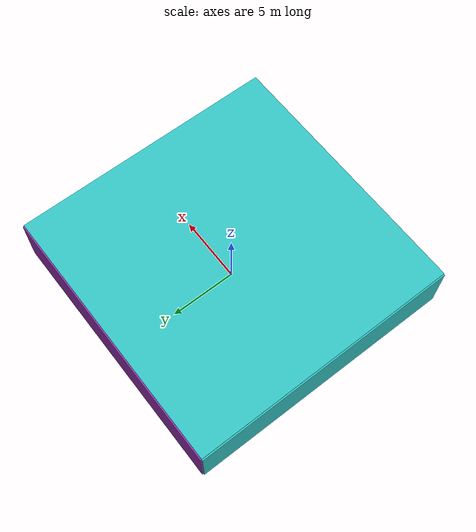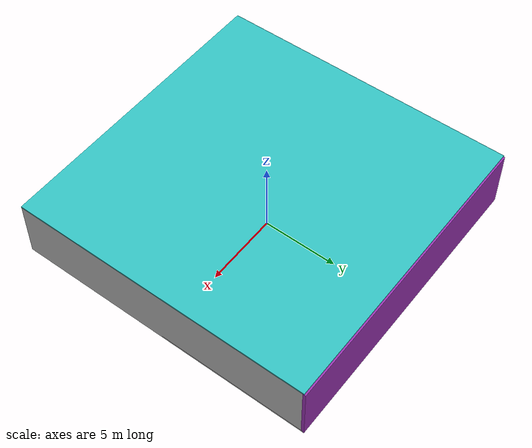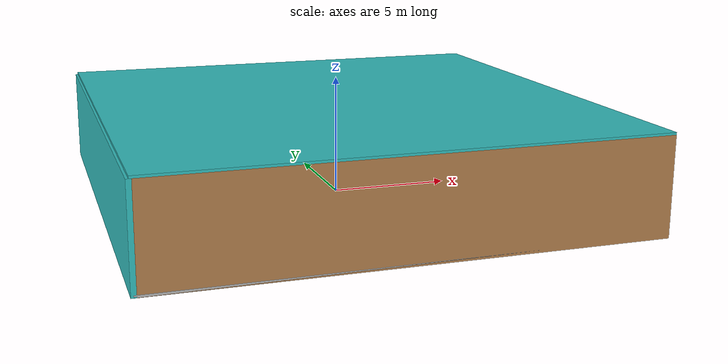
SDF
<sdf version="1.4">
 <world name="default">
  <physics type="ode">
   <max_step_size>0.001</max_step_size>
   <real_time_factor>1</real_time_factor>
   <real_time_update_rate>1000</real_time_update_rate>
   <gravity>0 0 -9.8</gravity>
  </physics>
  <scene><ambient>0.4 0.4 0.4 1</ambient><background>0.7 0.7 0.7 1</background><shadows>1</shadows></scene>
  <model name="Surrounding">
   <static>1</static>
   <link name="Ceiling">
    <collision name="Ceiling_Collision"><geometry><box><size>20 20 0.1</size></box></geometry></collision>
    <visual name="Ceiling_Visual">
     <geometry><box><size>20 20 0.1</size></box></geometry>
     <material>
      <script><uri>file://media/materials/scripts/gazebo.material</uri><name>Gazebo/TurquoiseGlow</name></script>
     </material>
    </visual>
    <pose>0 0 4.05 0 0 0</pose>
   </link>
   <link name="Wall_South">
    <collision name="Wall_South_Collision">
     <geometry><box><size>20 0 4</size></box></geometry>
     <pose>0 0 2 0 -0 0</pose>
    </collision>
    <visual name="Wall_South_Visual">
     <pose>0 0 2 0 -0 0</pose>
     <geometry><box><size>20 0 4</size></box></geometry>
     <material>
      <script><uri>file://media/materials/scripts/gazebo.material</uri><name>Gazebo/WoodFloor</name></script>
     </material>
    </visual>
    <velocity_decay><linear>0</linear><angular>0</angular></velocity_decay>
    <pose>0 -10 0 0 -0 0</pose>
   </link>
   <link name="Wall_East">
    <collision name="Wall_21_Collision">
     <geometry><box><size>20 0 4</size></box></geometry>
     <pose>0 0 2 0 -0 0</pose>
    </collision>
    <visual name="Wall_21_Visual">
     <pose>0 0 2 0 -0 0</pose>
     <geometry><box><size>20 0 4</size></box></geometry>
     <material>
      <script><uri>file://media/materials/scripts/gazebo.material</uri><name>Gazebo/PioneerBody</name></script>
     </material>
    </visual>
    <velocity_decay><linear>0</linear><angular>0</angular></velocity_decay>
    <pose>10 0 0 0 -0 1.5708</pose>
   </link>
   <link name="Wall_North">
    <collision name="Wall_22_Collision">
     <geometry><box><size>20 0.2 4</size></box></geometry>
     <pose>0 0 2 0 -0 0</pose>
    </collision>
    <visual name="Wall_22_Visual">
     <pose>0 0 2 0 -0 0</pose>
     <geometry><box><size>20 0.2 4</size></box></geometry>
     <material>
      <script><uri>file://media/materials/scripts/gazebo.material</uri><name>Gazebo/PurpleGlow</name></script>
     </material>
    </visual>
    <velocity_decay><linear>0</linear><angular>0</angular></velocity_decay>
    <pose>0 10 0 0 -0 0</pose>
   </link>
   <link name="Wall_West">
    <collision name="Wall_23_Collision">
     <geometry><box><size>20 0.2 4</size></box></geometry>
     <pose>0 0 2 0 -0 0</pose>
    </collision>
    <visual name="Wall_23_Visual">
     <pose>0 0 2 0 -0 0</pose>
     <geometry><box><size>20 0.2 4</size></box></geometry>
     <material>
      <script><uri>file://media/materials/scripts/gazebo.material</uri><name>Gazebo/TurquoiseGlow</name></script>
     </material>
    </visual>
    <velocity_decay><linear>0</linear><angular>0</angular></velocity_decay>
    <pose>-10 0 0 0 0 -1.5708</pose>
   </link>
   <link name="Ground_link">
    <collision name="collision">
     <pose>0 0 .05 0 -0 0</pose>
     <geometry><box><size>20 20 0.1</size></box></geometry>
    </collision>
    <visual name="visual">
     <pose>0 0 .05 0 -0 0</pose>
     <geometry><box><size>20 20 0.1</size></box></geometry>
     <material>
      <script><uri>file://media/materials/scripts/gazebo.material</uri><name>Gazebo/CloudySky</name></script>
     </material>
    </visual>
   </link>
   <static>1</static>
  </model>
  <spherical_coordinates>
   <surface_model>EARTH_WGS84</surface_model>
   <latitude_deg>0</latitude_deg>
   <longitude_deg>0</longitude_deg>
   <elevation>0</elevation>
   <heading_deg>0</heading_deg>
  </spherical_coordinates>
  <light name="lightball_0" type="diffuse">
   <diffuse>0.8 0.8 0.8 1</diffuse>
   <specular>0.2 0.2 0.2 1</specular>
   <attenuation>
    <range>100</range>
    <constant>0.7</constant>
    <linear>0.01</linear>
    <quadratic>0.001</quadratic>
   </attenuation>
   <direction>-0.5 0.1 -0.9</direction>
   <pose>-2.70769113623 9.79742276343 0.884029946687 0 0 0</pose>
  </light>
  <light name="lightball_1" type="diffuse">
   <diffuse>0.8 0.8 0.8 1</diffuse>
   <specular>0.2 0.2 0.2 1</specular>
   <attenuation>
    <range>100</range>
    <constant>0.7</constant>
    <linear>0.01</linear>
    <quadratic>0.001</quadratic>
   </attenuation>
   <direction>-0.5 0.1 -0.9</direction>
   <pose>-2.44311746755 1.48341083718 2.46209686432 0 0 0</pose>
  </light>
  <light name="lightball_2" type="diffuse">
   <diffuse>0.8 0.8 0.8 1</diffuse>
   <specular>0.2 0.2 0.2 1</specular>
   <attenuation>
    <range>100</range>
    <constant>0.7</constant>
    <linear>0.01</linear>
    <quadratic>0.001</quadratic>
   </attenuation>
   <direction>-0.5 0.1 -0.9</direction>
   <pose>-5.52437033813 -2.53146787321 1.88296780308 0 0 0</pose>
  </light>
  <light name="lightball_3" type="diffuse">
   <diffuse>0.8 0.8 0.8 1</diffuse>
   <specular>0.2 0.2 0.2 1</specular>
   <attenuation>
    <range>100</range>
    <constant>0.7</constant>
    <linear>0.01</linear>
    <quadratic>0.001</quadratic>
   </attenuation>
   <direction>-0.5 0.1 -0.9</direction>
   <pose>5.82803921864 -6.25806357333 3.53254028491 0 0 0</pose>
  </light>
  <light name="lightball_4" type="diffuse">
   <diffuse>0.8 0.8 0.8 1</diffuse>
   <specular>0.2 0.2 0.2 1</specular>
   <attenuation>
    <range>100</range>
    <constant>0.7</constant>
    <linear>0.01</linear>
    <quadratic>0.001</quadratic>
   </attenuation>
   <direction>-0.5 0.1 -0.9</direction>
   <pose>-7.66423163098 3.1732914182 3.33624868564 0 0 0</pose>
  </light>
  <include><uri>model://table</uri><pose>-7.86258206849 -2.14835600329 0 0 0 0.268491986014</pose></include>
  <include>
   <uri>model://textured_shapes</uri>
   <pose>-7.17539542984 4.74777454081 0 0 0 1.40499489461</pose>
  </include>
  <include><uri>model://cabinet</uri><pose>-4.10078694334 1.63902878783 0 0 0 0.558530945933</pose></include>
  <include><uri>model://cabinet</uri><pose>-0.987502029203 1.07166870793 0 0 0 1.04249455841</pose></include>
  <include><uri>model://cabinet</uri><pose>-1.242147745 7.48621844991 0 0 0 2.59614642014</pose></include>
  <include><uri>model://cabinet</uri><pose>1.93826283918 -7.58734560583 0 0 0 0.53338482367</pose></include>
 </world>
</sdf>

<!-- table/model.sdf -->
<sdf version="1.5">
  <model name="table">
    <static>true</static>
    <link name="link">
      <collision name="surface">
        <pose>0 0 1.0 0 0 0</pose>
        <geometry>
          <box>
            <size>1.5 0.8 0.03</size>
          </box>
        </geometry>
        <surface>
          <friction>
            <ode>
              <mu>0.6</mu>
              <mu2>0.6</mu2>
            </ode>
          </friction>
        </surface>
      </collision>
      <visual name="visual1">
        <pose>0 0 1.0 0 0 0</pose>
        <geometry>
          <box>
            <size>1.5 0.8 0.03</size>
          </box>
        </geometry>
        <material>
          <script>
            <uri>model://media/materials/scripts/gazebo.material</uri>
            <name>Gazebo/Wood</name>
          </script>
        </material>
      </visual>
      <collision name="front_left_leg">
        <pose>0.68 0.38 0.5 0 0 0</pose>
        <geometry>
          <cylinder>
            <radius>0.02</radius>
            <length>1.0</length>
          </cylinder>
        </geometry>
      </collision>
      <visual name="front_left_leg">
        <pose>0.68 0.38 0.5 0 0 0</pose>
        <geometry>
          <cylinder>
            <radius>0.02</radius>
            <length>1.0</length>
          </cylinder>
        </geometry>
        <material>
          <script>
            <uri>model://media/materials/scripts/gazebo.material</uri>
            <name>Gazebo/Grey</name>
          </script>
        </material>
      </visual>
      <collision name="front_right_leg">
        <pose>0.68 -0.38 0.5 0 0 0</pose>
        <geometry>
          <cylinder>
            <radius>0.02</radius>
            <length>1.0</length>
          </cylinder>
        </geometry>
      </collision>
      <visual name="front_right_leg">
        <pose>0.68 -0.38 0.5 0 0 0</pose>
        <geometry>
          <cylinder>
            <radius>0.02</radius>
            <length>1.0</length>
          </cylinder>
        </geometry>
        <material>
          <script>
            <uri>model://media/materials/scripts/gazebo.material</uri>
            <name>Gazebo/Grey</name>
          </script>
        </material>
      </visual>
      <collision name="back_right_leg">
        <pose>-0.68 -0.38 0.5 0 0 0</pose>
        <geometry>
          <cylinder>
            <radius>0.02</radius>
            <length>1.0</length>
          </cylinder>
        </geometry>
      </collision>
      <visual name="back_right_leg">
        <pose>-0.68 -0.38 0.5 0 0 0</pose>
        <geometry>
          <cylinder>
            <radius>0.02</radius>
            <length>1.0</length>
          </cylinder>
        </geometry>
        <material>
          <script>
            <uri>model://media/materials/scripts/gazebo.material</uri>
            <name>Gazebo/Grey</name>
          </script>
        </material>
      </visual>
      <collision name="back_left_leg">
        <pose>-0.68 0.38 0.5 0 0 0</pose>
        <geometry>
          <cylinder>
            <radius>0.02</radius>
            <length>1.0</length>
          </cylinder>
        </geometry>
      </collision>
      <visual name="back_left_leg">
        <pose>-0.68 0.38 0.5 0 0 0</pose>
        <geometry>
          <cylinder>
            <radius>0.02</radius>
            <length>1.0</length>
          </cylinder>
        </geometry>
        <material>
          <script>
            <uri>model://media/materials/scripts/gazebo.material</uri>
            <name>Gazebo/Grey</name>
          </script>
        </material>
      </visual>
    </link>
  </model>
</sdf>

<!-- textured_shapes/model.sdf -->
<sdf version="1.6">
  <model name="textured_shapes">
    <pose>0 0 0.5 0 0 0</pose>
    <link name="box">
      <pose>0 -1.5 0 0 0 0</pose>
      <collision name="collision">
        <geometry>
          <box>
            <size>1 1 1</size>
          </box>
        </geometry>
      </collision>
      <visual name="visual">
        <geometry>
          <box>
            <size>1 1 1</size>
          </box>
        </geometry>
        <material>
          <script>
            <uri>model://../model_source/models/textured_shapes/materials/scripts</uri>
            <uri>model://../model_source/models/textured_shapes/materials/textures</uri>
            <name>TexturedShape/Squares</name>
          </script>
        </material>
      </visual>
    </link>
    <link name="sphere">
      <collision name="collision">
        <geometry>
          <sphere>
            <radius>0.5</radius>
          </sphere>
        </geometry>
      </collision>
      <visual name="visual">
        <geometry>
          <sphere>
            <radius>0.5</radius>
          </sphere>
        </geometry>
        <material>
          <script>
            <uri>model://../model_source/models/textured_shapes/materials/scripts</uri>
            <uri>model://../model_source/models/textured_shapes/materials/textures</uri>
            <name>TexturedShape/Squares</name>
          </script>
        </material>
      </visual>
    </link>
    <link name="cylinder">
      <pose>0 1.5 0 0 0 0</pose>
      <collision name="collision">
        <geometry>
          <cylinder>
            <radius>0.5</radius>
            <length>1</length>
          </cylinder>
        </geometry>
      </collision>
      <visual name="visual">
        <geometry>
          <cylinder>
            <radius>0.5</radius>
            <length>1</length>
          </cylinder>
        </geometry>
        <material>
          <script>
            <uri>model://../model_source/models/textured_shapes/materials/scripts</uri>
            <uri>model://../model_source/models/textured_shapes/materials/textures</uri>
            <name>TexturedShape/Squares</name>
          </script>
        </material>
      </visual>
    </link>
  </model>
</sdf>

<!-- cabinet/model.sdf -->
<sdf version="1.5">
  <model name="cabinet">
    <static>true</static>
    <link name="cabinet_bottom_plate">
      <inertial>
        <pose>0 0 -1 0 0 0</pose>
        <inertia>
          <ixx>2.050000</ixx>
          <ixy>0</ixy>
          <ixz>0</ixz>
          <iyy>2.050000</iyy>
          <iyz>0</iyz>
          <izz>2.050000</izz>
        </inertia>
        <mass>25.000000</mass>
      </inertial>
      <collision name="cabinet_bottom_plate_geom">
        <pose>0 0 0.010000 0 0 0</pose>
        <geometry>
          <box>
            <size>0.450000 0.450000 0.020000</size>
          </box>
        </geometry>
      </collision>
      <visual name="cabinet_bottom_plate_geom_visual">
        <pose>0 0 0.010000 0 0 0</pose>
        <geometry>
          <box>
            <size>0.450000 0.450000 0.020000</size>
          </box>
        </geometry>
        <material>
          <script>
            <uri>model://media/materials/scripts/gazebo.material</uri>
            <name>Gazebo/Wood</name>
          </script>
        </material>
      </visual>
      <collision name="cabinet_bottom_plate_geom_cabinet_back_plate">
        <pose>0.235000 0 0.510000 0 0 0</pose>
        <geometry>
          <box>
            <size>0.020000 0.450000 1.020000</size>
          </box>
        </geometry>
      </collision>
      <visual name="cabinet_bottom_plate_geom_cabinet_back_plate_visual">
        <pose>0.235000 0 0.510000 0 0 0</pose>
        <geometry>
          <box>
            <size>0.020000 0.450000 1.020000</size>
          </box>
        </geometry>
        <material>
          <script>
            <uri>model://media/materials/scripts/gazebo.material</uri>
            <name>Gazebo/Wood</name>
          </script>
        </material>
      </visual>
      <collision name="cabinet_bottom_plate_geom_cabinet_left_plate">
        <pose>0 0.235000 0.510000 0 0 0</pose>
        <geometry>
          <box>
            <size>0.450000 0.020000 1.020000</size>
          </box>
        </geometry>
      </collision>
      <visual name="cabinet_bottom_plate_geom_cabinet_left_plate_visual">
        <pose>0 0.235000 0.510000 0 0 0</pose>
        <geometry>
          <box>
            <size>0.450000 0.020000 1.020000</size>
          </box>
        </geometry>
        <material>
          <script>
            <uri>model://media/materials/scripts/gazebo.material</uri>
            <name>Gazebo/Wood</name>
          </script>
        </material>
      </visual>
      <collision name="cabinet_bottom_plate_geom_cabinet_middle_plate">
        <pose>0 0 0.510000 0 0 0</pose>
        <geometry>
          <box>
            <size>0.450000 0.450000 0.020000</size>
          </box>
        </geometry>
      </collision>
      <visual name="cabinet_bottom_plate_geom_cabinet_middle_plate_visual">
        <pose>0 0 0.510000 0 0 0</pose>
        <geometry>
          <box>
            <size>0.450000 0.450000 0.020000</size>
          </box>
        </geometry>
        <material>
          <script>
            <uri>model://media/materials/scripts/gazebo.material</uri>
            <name>Gazebo/Wood</name>
          </script>
        </material>
      </visual>
      <collision name="cabinet_bottom_plate_geom_cabinet_right_plate">
        <pose>0 -0.235000 0.510000 0 0 0</pose>
        <geometry>
          <box>
            <size>0.450000 0.020000 1.020000</size>
          </box>
        </geometry>
      </collision>
      <visual name="cabinet_bottom_plate_geom_cabinet_right_plate_visual">
        <pose>0 -0.235000 0.510000 0 0 0</pose>
        <geometry>
          <box>
            <size>0.450000 0.020000 1.020000</size>
          </box>
        </geometry>
        <material>
          <script>
            <uri>model://media/materials/scripts/gazebo.material</uri>
            <name>Gazebo/Wood</name>
          </script>
        </material>
      </visual>
      <collision name="cabinet_bottom_plate_geom_cabinet_top_plate">
        <pose>0 0 1.010000 0 0 0</pose>
        <geometry>
          <box>
            <size>0.450000 0.450000 0.020000</size>
          </box>
        </geometry>
      </collision>
      <visual name="cabinet_bottom_plate_geom_cabinet_top_plate_visual">
        <pose>0 0 1.010000 0 0 0</pose>
        <geometry>
          <box>
            <size>0.450000 0.450000 0.020000</size>
          </box>
        </geometry>
        <material>
          <script>
            <uri>model://media/materials/scripts/gazebo.material</uri>
            <name>Gazebo/Wood</name>
          </script>
        </material>
      </visual>
    </link>
  </model>
</sdf>
